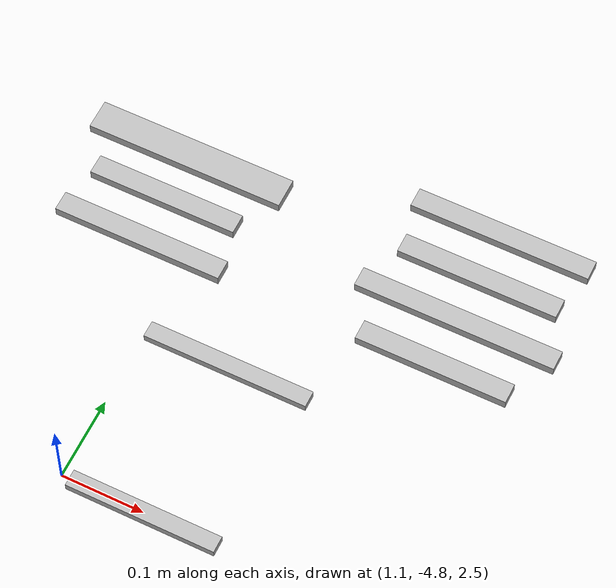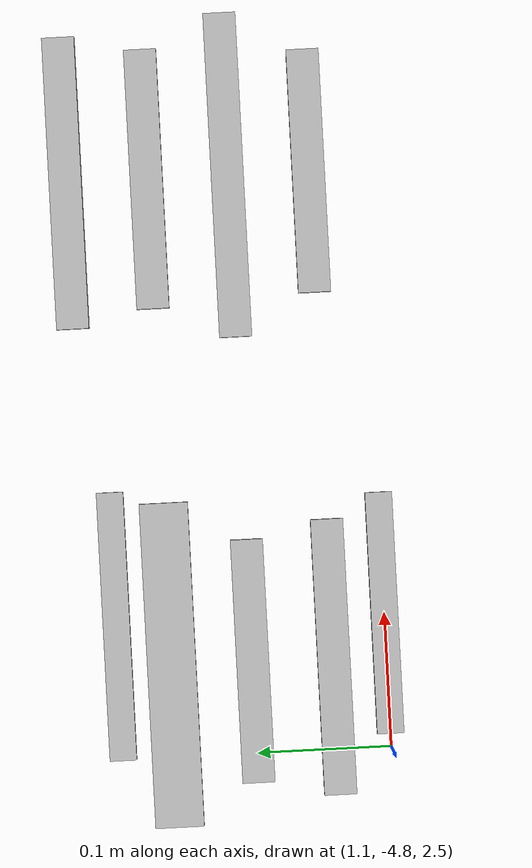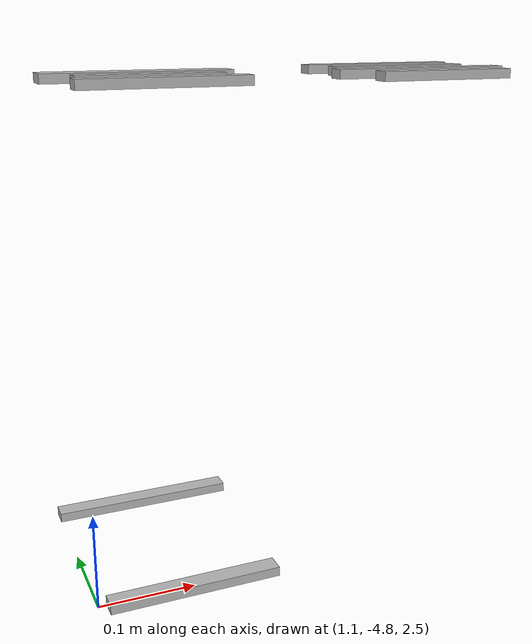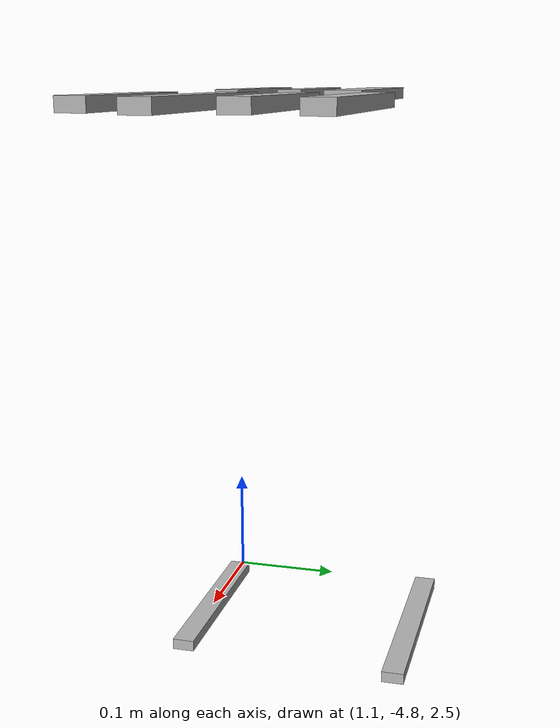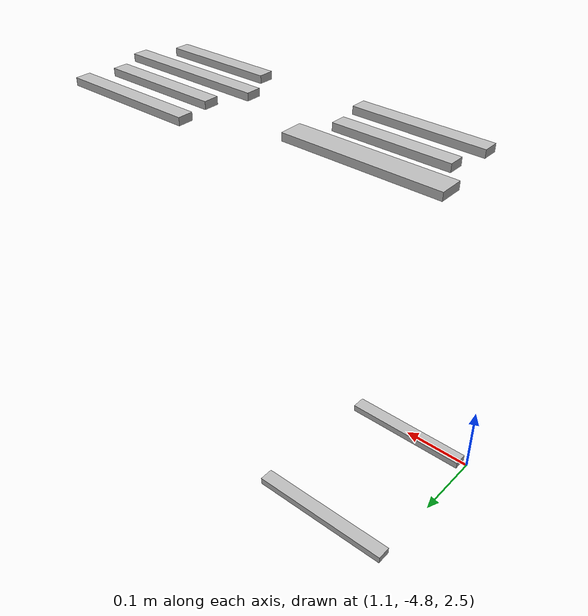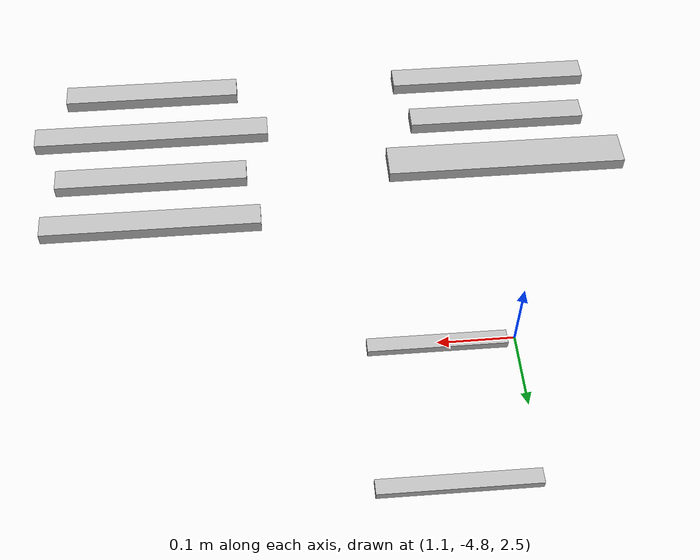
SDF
<sdf version="1.6">
 <world name="surgical_world">
  <include><uri>model://sun</uri></include>
  <include><uri>model://ground_plane</uri></include>
  <model name="scalpel_1">
   <pose>1.2 -4.6 2.5 0 0 0</pose>
   <link name="link">
    <inertial><mass>0.1</mass></inertial>
    <collision name="collision">
     <geometry><box><size>0.2 0.02 0.01</size></box></geometry>
     <surface><friction><ode><mu>100</mu><mu2>100</mu2></ode></friction></surface>
    </collision>
    <visual name="visual"><geometry><box><size>0.2 0.02 0.01</size></box></geometry></visual>
   </link>
  </model>
  <model name="forceps_1">
   <pose>1.2 -4.8 2.5 0 0 0</pose>
   <link name="link">
    <inertial><mass>0.1</mass></inertial>
    <collision name="collision">
     <geometry><box><size>0.18 0.02 0.01</size></box></geometry>
     <surface><friction><ode><mu>100</mu><mu2>100</mu2></ode></friction></surface>
    </collision>
    <visual name="visual"><geometry><box><size>0.18 0.02 0.01</size></box></geometry></visual>
   </link>
  </model>
  <model name="scissors_1">
   <pose>1.2 -4.65 3 0 0 0</pose>
   <link name="link">
    <inertial><mass>0.1</mass></inertial>
    <collision name="collision">
     <geometry><box><size>0.2 0.03 0.01</size></box></geometry>
     <surface><friction><ode><mu>100</mu><mu2>100</mu2></ode></friction></surface>
    </collision>
    <visual name="visual"><geometry><box><size>0.2 0.03 0.01</size></box></geometry></visual>
   </link>
  </model>
  <model name="clamp_1">
   <pose>1.2 -4.7 3 0 0 0</pose>
   <link name="link">
    <inertial><mass>0.1</mass></inertial>
    <collision name="collision">
     <geometry><box><size>0.15 0.02 0.01</size></box></geometry>
     <surface><friction><ode><mu>100</mu><mu2>100</mu2></ode></friction></surface>
    </collision>
    <visual name="visual"><geometry><box><size>0.15 0.02 0.01</size></box></geometry></visual>
   </link>
  </model>
  <model name="tool_5">
   <pose>1.2 -4.75 3 0 0 0</pose>
   <link name="link">
    <collision name="collision">
     <geometry><box><size>0.17 0.02 0.01</size></box></geometry>
     <surface><friction><ode><mu>100</mu><mu2>100</mu2></ode></friction></surface>
    </collision>
    <visual name="visual"><geometry><box><size>0.17 0.02 0.01</size></box></geometry></visual>
   </link>
  </model>
  <model name="tool_6">
   <pose>1.5 -4.6 3 0 0 0</pose>
   <link name="link">
    <collision name="collision">
     <geometry><box><size>0.18 0.02 0.01</size></box></geometry>
     <surface><friction><ode><mu>100</mu><mu2>100</mu2></ode></friction></surface>
    </collision>
    <visual name="visual"><geometry><box><size>0.18 0.02 0.01</size></box></geometry></visual>
   </link>
  </model>
  <model name="tool_7">
   <pose>1.5 -4.65 3 0 0 0</pose>
   <link name="link">
    <collision name="collision">
     <geometry><box><size>0.16 0.02 0.01</size></box></geometry>
     <surface><friction><ode><mu>100</mu><mu2>100</mu2></ode></friction></surface>
    </collision>
    <visual name="visual"><geometry><box><size>0.16 0.02 0.01</size></box></geometry></visual>
   </link>
  </model>
  <model name="tool_8">
   <pose>1.5 -4.7 3 0 0 0</pose>
   <link name="link">
    <collision name="collision">
     <geometry><box><size>0.2 0.02 0.01</size></box></geometry>
     <surface><friction><ode><mu>100</mu><mu2>100</mu2></ode></friction></surface>
    </collision>
    <visual name="visual"><geometry><box><size>0.2 0.02 0.01</size></box></geometry></visual>
   </link>
  </model>
  <model name="tool_9">
   <pose>1.5 -4.75 3 0 0 0</pose>
   <link name="link">
    <collision name="collision">
     <geometry><box><size>0.15 0.02 0.01</size></box></geometry>
     <surface><friction><ode><mu>100</mu><mu2>100</mu2></ode></friction></surface>
    </collision>
    <visual name="visual"><geometry><box><size>0.15 0.02 0.01</size></box></geometry></visual>
   </link>
  </model>
 </world>
</sdf>
